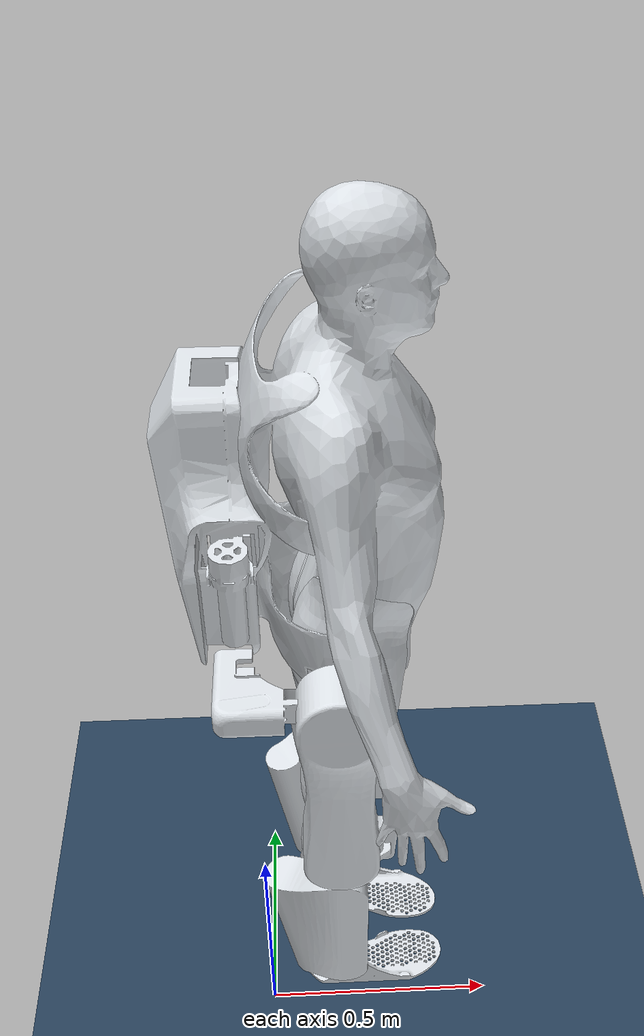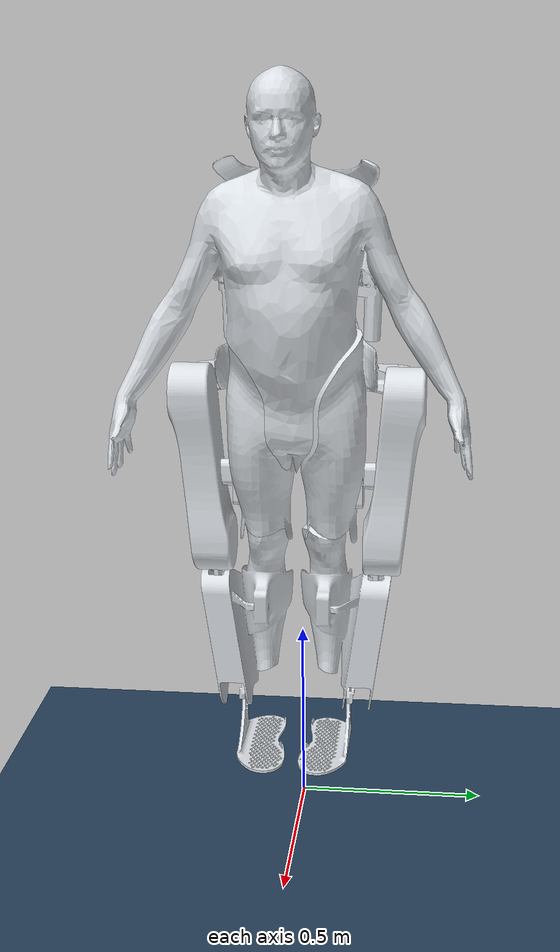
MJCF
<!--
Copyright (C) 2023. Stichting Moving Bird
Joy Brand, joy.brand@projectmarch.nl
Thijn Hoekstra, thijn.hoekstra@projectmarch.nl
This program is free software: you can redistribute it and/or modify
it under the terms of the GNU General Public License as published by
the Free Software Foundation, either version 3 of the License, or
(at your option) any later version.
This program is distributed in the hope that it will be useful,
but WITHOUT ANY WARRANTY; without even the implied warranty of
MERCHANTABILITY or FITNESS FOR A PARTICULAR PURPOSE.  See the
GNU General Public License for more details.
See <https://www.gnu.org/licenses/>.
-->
<mujoco model="exoskeleton">
  <compiler meshdir="obj-files" angle="degree" autolimits="true"/>
  <size nuser_actuator='1' nuser_sensor='1' nuser_geom='1'/>
  <option timestep='0.0005' iterations='50' solver='PGS' gravity='0 0 -9.81'/>

  <asset>
    <texture type="skybox" builtin="gradient" rgb1=".3 .5 .7" rgb2="0 0 0" width="512" height="512"/>
    <texture name="body" type="cube" builtin="flat" mark="cross" width="127" height="1278"
             rgb1="0.8 0.6 0.4" rgb2="0.8 0.6 0.4" markrgb="1 1 1" random="0.01"/>
    <texture name="grid" type="2d" builtin="checker" width="512" height="512" rgb1=".1 .2 .3" rgb2=".2 .3 .4"/>
    <material name="grid" texture="grid" texrepeat="1 1" texuniform="true" reflectance=".2"/>
    <material name="march_grey" rgba=".87 .89 .91 1"/>
    <mesh name="backpack"    file="Backpack.obj"/>
    <mesh name="L_foot"      file="FootLeft.obj"/>
    <mesh name="L_hip"       file="HipLeft.obj"/>
    <mesh name="L_thigh"     file="UpperLegLeft.obj"/>
    <mesh name="L_shin"      file="LowerLegLeft.obj"/>
    <mesh name="R_foot"     scale="1 -1 1"    file="FootLeft.obj"/>
    <mesh name="R_hip"      scale="1 -1 1"    file="HipLeft.obj"/>
    <mesh name="R_thigh"    scale="1 -1 1"    file="UpperLegLeft.obj"/>
    <mesh name="R_shin"     scale="1 -1 1"    file="LowerLegLeft.obj"/>
  </asset>

  <default>
    <site group="5"/>
    <motor ctrlrange="-1 1" ctrllimited="true"/>
    <geom contype="0" conaffinity="0" condim="1" solref="0.005 1"/>
    <equality solref="0.005 1"/>
    <default class="exoskeleton">
      <geom material="march_grey" group="2"/>
    </default>
    <default class="collision">
      <geom contype="1" group="3" type="capsule"/>
      <default class="L_collision">
        <geom contype="2" conaffinity="4"/>
      </default>
      <default class="R_collision">
        <geom contype="4" conaffinity="2"/>
      </default>
    </default>
    <default class="HAA_joint">
      <joint damping="107.692308"
              armature="5.4"
             frictionloss="0" stiffness="0"/>
    </default>
    <default class="ADPF_joint">
      <joint damping="43.658537"
              armature="2.2"
             frictionloss="0" stiffness="0"/>
    </default>
    <default class="rotational_joint">
      <joint damping="63.451777"
              armature="9.98"
             frictionloss="0" stiffness="0"/>
    </default>
  </default>

  <visual>
    <map force="0.1" zfar="30"/>
    <rgba haze="0.15 0.25 0.35 1"/>
    <quality shadowsize="4096"/>
    <global offwidth="800" offheight="800"/>
  </visual>

  <worldbody>
    <geom name="floor" size="0 0 .05" type="plane" material="grid" conaffinity="15" condim="3"/>
    <light name="spotlight" mode="targetbodycom" target="backpack"
           diffuse=".8 .8 .8" specular="0.3 0.3 0.3" pos="0 -20 4" cutoff="10"/>

    <body name="backpack"
          pos="0 0 1.2"
          childclass="exoskeleton">
      <light name="top" pos="0 0 2" mode="trackcom"/>
      <camera name="diag" pos="3 -2.5 1" xyaxes="1 1 0 0 1 2" mode="trackcom"/>
      <camera name="right" pos="0 -3 1" xyaxes="1 0 0 0 1 2" mode="trackcom"/>
      <site name='imu_backpack' size='0.01' pos="0 0 0"/>
      <inertial pos="0.171 -0.006 0.342" mass="57.096"
                fullinertia="2.931 2.492 1.522 0.023 -0.1 0.025"/>
      <geom type="mesh" mesh="backpack" />
      <geom name="backpack" type="box"
            size="0.051 0.189 0.165"
            pos="-0.02 0 0.13" class="collision"/>

    <site name="imu_torso" size='0.01' pos="0.2 0 0.4"/>

      <!--  LEFT LEG -->
      <body name="L_hip" pos="-0.021 0.08 0.025">
        <inertial pos="0.05 0.109 0.033" mass="1.849"
                  fullinertia="0.012 0.013 0.012 -0.004 0.002 0"/>
        <joint name="left_hip_aa" axis="-1 0 0" range="-15 10" class="HAA_joint"/>
        <geom type="mesh" mesh="L_hip" />
        <geom name="L_hip" fromto="0 0 0 0.182 0.182 0"
              size="0.032" class="L_collision"/>
        <site name="tor_L_HAA" size="0.01" pos="0 0 0"/>

        <body name="L_UL" pos="0.182 0.182 0">
        <inertial pos="0.012 -0.098 -0.151" mass="26.104"
                  fullinertia="0.859 0.733 0.23 0.021 -0.025 0.055"/>
          <joint name="left_hip_fe" axis="0 -1 0" range="-10 112.5" class="rotational_joint"/>
          <geom type="mesh" mesh="L_thigh" pos="0 .013 0" />
          <geom name="L_UL" fromto="0 0 0 0 -0.06 -0.413"
              size="0.069" class="L_collision"/>
          <site name="tor_L_HFE" size="0.01" pos="0 0 0"/>

          <body name="L_LL" pos="0 -0.06 -0.413">
            <inertial pos="-0.021 -0.079 -0.157" mass="7.061"
                  fullinertia="0.12 0.117 0.034 0.003 -0.008 0.012"/>
            <joint name="left_knee" axis="0 1 0" range="0 125" class="rotational_joint"/>
            <geom type="mesh" mesh="L_shin"/>
            <geom name="L_LL" fromto="0 0 0 0.0 -0.037 -0.414"
              size="0.047" class="L_collision"/>
            <site name="tor_L_KFE" size="0.01" pos="0 0 0"/>

            <body name="L_foot" pos="0.0 -0.037 -0.414">
              <inertial pos="0.007 -0.054 -0.035" mass="2.964"
                  fullinertia="0.023 0.031 0.019 0.004 0.011 -0.004"/>
              <joint name="left_ankle" axis="0 -1 0" range="-25 10" class="ADPF_joint"/>
              <geom type="mesh" mesh="L_foot"/>
              <site name="tor_L_ADPF" size="0.01" pos="0 0 0"/>

              <!-- The L_foot geometry models a footplate which extends past the pressure pads on the soles-->
              <geom name="L_foot" type="box" size="0.159 0.057 0.007"
                  pos="0.069 -0.086 -0.118"  class="L_collision"
                  friction="3.0"/>

              <!-- Pressure sole  -->
             <body name="pres_L_0" pos="-0.045 -0.072 -0.138">
                <geom name="pres_L_0" type="sphere" pos="0 0 0"
                      size="0.01" class="L_collision"  friction="3.0"/>
                <site name="pres_L_0"/>
              </body>
              <body name="pres_L_1" pos="-0.045 -0.072 -0.138">
                <geom name="pres_L_1" type="sphere" pos="0 0 0"
                      size="0.01" class="L_collision"  friction="3.0"/>
                <site name="pres_L_1"/>
              </body>
              <body name="pres_L_2" pos="0.05 -0.061 -0.138">
                <geom name="pres_L_2" type="sphere" pos="0 0 0"
                      size="0.01" class="L_collision"  friction="3.0"/>
                <site name="pres_L_2"/>
              </body>
              <body name="pres_L_3" pos="0.118 -0.05 -0.138">
                <geom name="pres_L_3" type="sphere" pos="0 0 0"
                      size="0.01" class="L_collision"  friction="3.0"/>
                <site name="pres_L_3"/>
              </body>
              <body name="pres_L_4" pos="0.13 -0.083 -0.138">
                <geom name="pres_L_4" type="sphere" pos="0 0 0"
                      size="0.01" class="L_collision"  friction="3.0"/>
                <site name="pres_L_4"/>
              </body>
              <body name="pres_L_5" pos="0.137 -0.115 -0.138">
                <geom name="pres_L_5" type="sphere" pos="0 0 0"
                      size="0.01" class="L_collision"  friction="3.0"/>
                <site name="pres_L_5"/>
              </body>
              <body name="pres_L_6" pos="0.174 -0.07 -0.138">
                <geom name="pres_L_6" type="sphere" pos="0 0 0"
                      size="0.01" class="L_collision"  friction="3.0"/>
                <site name="pres_L_6"/>
              </body>
              <body name="pres_L_7" pos="0.184 -0.105 -0.138">
                <geom name="pres_L_7" type="sphere" pos="0 0 0"
                      size="0.01" class="L_collision"  friction="3.0"/>
                <site name="pres_L_7"/>
              </body>
            </body>
          </body>
        </body>
      </body>

      <!--  RIGHT LEG -->
      <body name="R_hip" pos="-0.021 -0.08 0.025">
        <inertial pos="0.05 -0.109 0.033" mass="1.849"
                  fullinertia="0.012 0.013 0.012 0.004 0.002 -0"/>
        <joint name="right_hip_aa" axis="1 0 0" range="-15 10" class="HAA_joint"/>
        <geom type="mesh" mesh="R_hip" />
        <geom name="R_hip" fromto="0 0 0 0.182 -0.182 0"
              size="0.032" class="R_collision"/>
        <site name="tor_R_HAA" size="0.01" pos="0 0 0"/>

        <body name="R_UL" pos="0.182 -0.182 0">
          <inertial pos="0.012 0.098 -0.151" mass="26.104"
                  fullinertia="0.859 0.733 0.23 -0.021 -0.025 -0.055"/>
          <joint name="right_hip_fe" axis="0 -1 0" range="-10 112.5" class="rotational_joint"/>
          <geom type="mesh" mesh="R_thigh"/>
          <geom name="R_UL" fromto="0 0 0 0 0.06 -0.413"
              size="0.069" class="R_collision"/>
          <site name="tor_R_HFE" size="0.01" pos="0 0 0"/>

          <body name="R_LL" pos="0 0.06 -0.413">
            <inertial pos="-0.021 0.079 -0.157" mass="7.061"
                  fullinertia="0.12 0.117 0.034 -0.003 -0.008 -0.012"/>
            <joint name="right_knee" axis="0 1 0" range="0 125" class="rotational_joint"/>
            <geom type="mesh" mesh="R_shin"/>
            <geom name="R_LL" fromto="0 0 0 0.0 0.037 -0.414"
              size="0.047" class="R_collision"/>
            <site name="tor_R_KFE" size="0.01" pos="0 0 0"/>

            <body name="R_foot" pos="0.0 0.037 -0.414">
              <inertial pos="0.007 0.054 -0.035" mass="2.964"
                  fullinertia="0.023 0.031 0.019 -0.004 0.011 0.004"/>
              <joint name="right_ankle" axis="0 -1 0" range="-25 10" class="ADPF_joint"/>
              <geom type="mesh" mesh="R_foot"/>
              <site name="tor_R_ADPF" size="0.01" pos="0 0 0"/>

              <!-- The R_foot geometry models a footplate which extends past the pressure pads on the soles-->
              <geom name="R_foot" type="box" size="0.159 0.057 0.007"
                  pos="0.069 0.086 -0.118"  class="R_collision"
                  friction="3.0"/>

                  <!-- Pressure sole  -->
              <body name="pres_R_0" pos="-0.045 0.072 -0.138">
                <geom name="pres_R_0" type="sphere" pos="0 0 0"
                      size="0.01" class="L_collision"  friction="3.0"/>
                <site name="pres_R_0"/>
              </body>
              <body name="pres_R_1" pos="-0.045 0.072 -0.138">
                <geom name="pres_R_1" type="sphere" pos="0 0 0"
                      size="0.01" class="L_collision"  friction="3.0"/>
                <site name="pres_R_1"/>
              </body>
              <body name="pres_R_2" pos="0.05 0.061 -0.138">
                <geom name="pres_R_2" type="sphere" pos="0 0 0"
                      size="0.01" class="L_collision"  friction="3.0"/>
                <site name="pres_R_2"/>
              </body>
              <body name="pres_R_3" pos="0.118 0.05 -0.138">
                <geom name="pres_R_3" type="sphere" pos="0 0 0"
                      size="0.01" class="L_collision"  friction="3.0"/>
                <site name="pres_R_3"/>
              </body>
              <body name="pres_R_4" pos="0.13 0.083 -0.138">
                <geom name="pres_R_4" type="sphere" pos="0 0 0"
                      size="0.01" class="L_collision"  friction="3.0"/>
                <site name="pres_R_4"/>
              </body>
              <body name="pres_R_5" pos="0.137 0.115 -0.138">
                <geom name="pres_R_5" type="sphere" pos="0 0 0"
                      size="0.01" class="L_collision"  friction="3.0"/>
                <site name="pres_R_5"/>
              </body>
              <body name="pres_R_6" pos="0.174 0.07 -0.138">
                <geom name="pres_R_6" type="sphere" pos="0 0 0"
                      size="0.01" class="L_collision"  friction="3.0"/>
                <site name="pres_R_6"/>
              </body>
              <body name="pres_R_7" pos="0.184 0.105 -0.138">
                <geom name="pres_R_7" type="sphere" pos="0 0 0"
                      size="0.01" class="L_collision"  friction="3.0"/>
                <site name="pres_R_7"/>
              </body>
            </body>
          </body>
        </body>
      </body>

    </body>
  </worldbody>

  <actuator>
    <!-- User parameter is the maximum no-load motor RPM -->
    <motor name="left_ankle"    gear="179"  joint="left_ankle"  forcerange="-3.8 3.8"/>
    <motor name="left_hip_aa"     gear="280"  joint="left_hip_aa"  forcerange="-3.8 3.8"/>
    <motor name="left_hip_fe"     gear="250" joint="left_hip_fe"  forcerange="-3.8 3.8"/>
    <motor name="left_knee"     gear="250"  joint="left_knee"  forcerange="-3.8 3.8"/>
    <motor name="right_ankle"    gear="179"  joint="right_ankle"  forcerange="-3.8 3.8"/>
    <motor name="right_hip_aa"     gear="280"  joint="right_hip_aa"  forcerange="-3.8 3.8"/>
    <motor name="right_hip_fe"     gear="250" joint="right_hip_fe"  forcerange="-3.8 3.8"/>
    <motor name="right_knee"     gear="250"  joint="right_knee"  forcerange="-3.8 3.8"/>
  </actuator>

  <sensor>
    <!-- User parameter is the number of absolute encoder bits -->
    <!-- encodersoutput position; connected to the actuator -->
    <jointpos name="L_ADPF_pos_output" joint="left_ankle" user="18" noise="000"/>
    <jointpos name="L_HAA_pos_output" joint="left_hip_aa" user="18" noise="000"/>
    <jointpos name="L_HFE_pos_output" joint="left_hip_fe" user="18" noise="000"/>
    <jointpos name="L_KFE_pos_output" joint="left_knee" user="18" noise="000"/>
    <jointpos name="R_ADPF_output" joint="right_ankle" user="18" noise="000"/>
    <jointpos name="R_HAA_output" joint="right_hip_aa" user="18" noise="000"/>
    <jointpos name="R_HFE_output" joint="right_hip_fe" user="18" noise="000"/>
    <jointpos name="R_KFE_output" joint="right_knee" user="18" noise="000"/>
    <!-- encodersoutput velocity; connected to the actuator -->
    <jointvel name="L_ADPF_vel_output" joint="left_ankle" user="18" noise="000"/>
    <jointvel name="L_HAA_vel_output" joint="left_hip_aa" user="18" noise="000"/>
    <jointvel name="L_HFE_vel_output" joint="left_hip_fe" user="18" noise="000"/>
    <jointvel name="L_KFE_vel_output" joint="left_knee" user="18" noise="000"/>
    <jointvel name="R_ADPF_vel_output" joint="right_ankle" user="18" noise="000"/>
    <jointvel name="R_HAA_vel_output" joint="right_hip_aa" user="18" noise="000"/>
    <jointvel name="R_HFE_vel_output" joint="right_hip_fe" user="18" noise="000"/>
    <jointvel name="R_KFE_vel_output" joint="right_knee" user="18" noise="000"/>
    <!-- torque sensors; connected to the actuator-->

<!--    TODO: This could also be of the type actuatorvel -->
    <torque name="L_ADPF_tor_output" site="tor_L_ADPF" user="13" noise="000"/>
    <torque name="L_HAA_tor_output" site="tor_L_HAA" user="13" noise="000"/>
    <torque name="L_HFE_tor_output" site="tor_L_HFE" user="13" noise="000"/>
    <torque name="L_KFE_tor_output" site="tor_L_KFE" user="13" noise="000"/>
    <torque name="R_ADPF_tor_output" site="tor_R_ADPF" user="13" noise="000"/>
    <torque name="R_HAA_tor_output" site="tor_R_HAA" user="13" noise="000"/>
    <torque name="R_HFE_tor_output" site="tor_R_HFE" user="13" noise="000"/>
    <torque name="R_KFE_tor_output" site="tor_R_KFE" user="13" noise="000"/>

    <!-- pressure soles not finished yet -->
    <force name="L_pressuresole_1_output" site="pres_L_0" noise="000" cutoff="000"/>
    <force name="L_pressuresole_2_output" site="pres_L_1" noise="000" cutoff="000"/>
    <force name="L_pressuresole_3_output" site="pres_L_2" noise="000" cutoff="000"/>
    <force name="L_pressuresole_4_output" site="pres_L_3" noise="000" cutoff="000"/>
    <force name="L_pressuresole_5_output" site="pres_L_4" noise="000" cutoff="000"/>
    <force name="L_pressuresole_6_output" site="pres_L_5" noise="000" cutoff="000"/>
    <force name="L_pressuresole_7_output" site="pres_L_6" noise="000" cutoff="000"/>
    <force name="L_pressuresole_8_output" site="pres_L_7" noise="000" cutoff="000"/>

    <force name="R_pressuresole_1_output" site="pres_R_0" noise="000" cutoff="000"/>
    <force name="R_pressuresole_2_output" site="pres_R_1" noise="000" cutoff="000"/>
    <force name="R_pressuresole_3_output" site="pres_R_2" noise="000" cutoff="000"/>
    <force name="R_pressuresole_4_output" site="pres_R_3" noise="000" cutoff="000"/>
    <force name="R_pressuresole_5_output" site="pres_R_4" noise="000" cutoff="000"/>
    <force name="R_pressuresole_6_output" site="pres_R_5" noise="000" cutoff="000"/>
    <force name="R_pressuresole_7_output" site="pres_R_6" noise="000" cutoff="000"/>
    <force name="R_pressuresole_8_output" site="pres_R_7" noise="000" cutoff="000"/>

    <!-- Noise & cutoff must be determined -->
    <framepos name='backpack_position' objtype='site' objname='imu_backpack'/>
    <framelinvel name='backpack_velocity' objtype='site' objname='imu_backpack'/>
    <framequat name='backpack_orientation' objtype='site' objname='imu_backpack'/>
    <gyro name='vel_imu_backpack' site='imu_backpack' noise='5e-4' cutoff='34.9'/>
    <accelerometer name='acc_imu_backpack' site='imu_backpack' noise='1e-2' cutoff='157'/>
    <magnetometer name='magnet_imu_backpack' site='imu_backpack'/>

    <framequat name='torso_orientation' objtype='site' objname='imu_torso'/>
    <gyro name='vel_imu_torso' site='imu_torso' noise='5e-4' cutoff='34.9'/>
    <accelerometer name='acc_imu_torso' site='imu_torso' noise='1e-2' cutoff='157'/>
    <magnetometer name='magnet_imu_torso' site='imu_torso'/>

  </sensor>

<keyframe>
  <key name="test" qpos='0 1 0.3 0.5 0 1 0.3 0.5'/>
</keyframe>

</mujoco>
